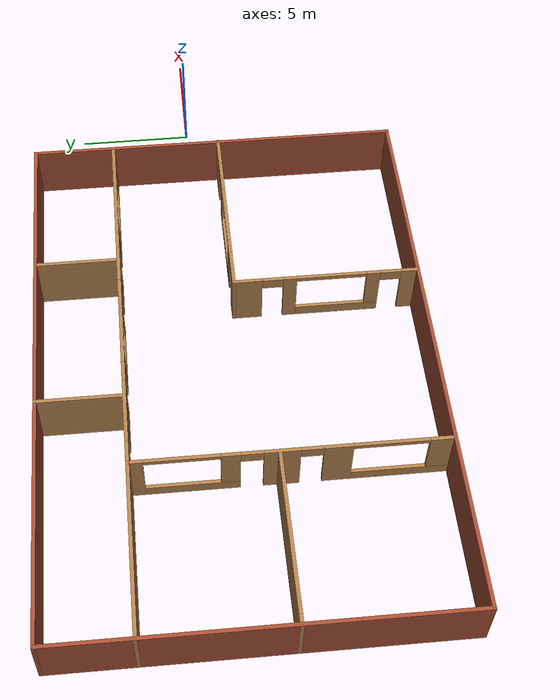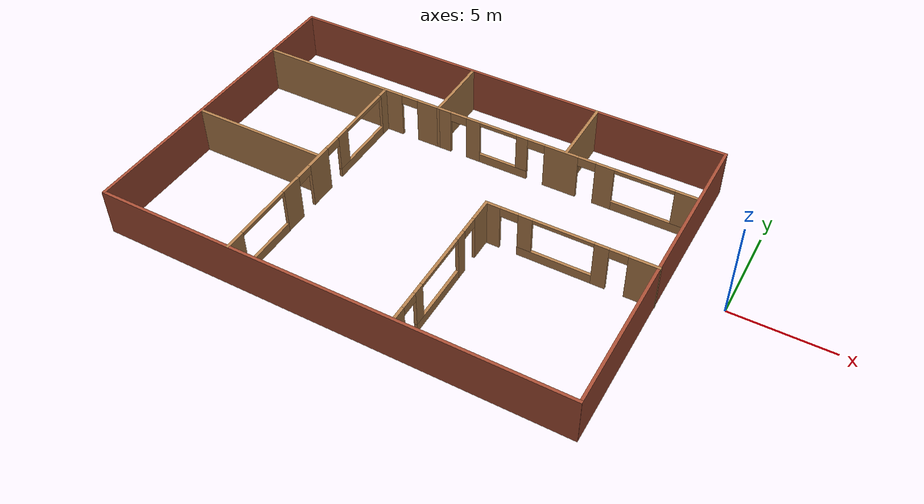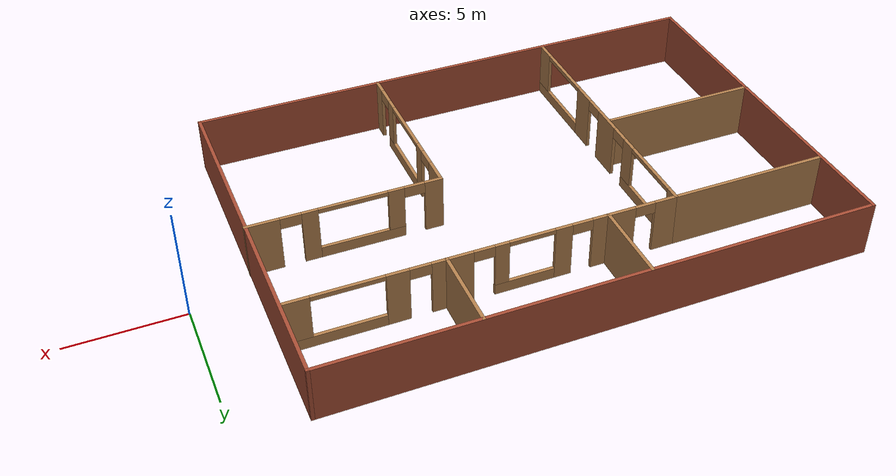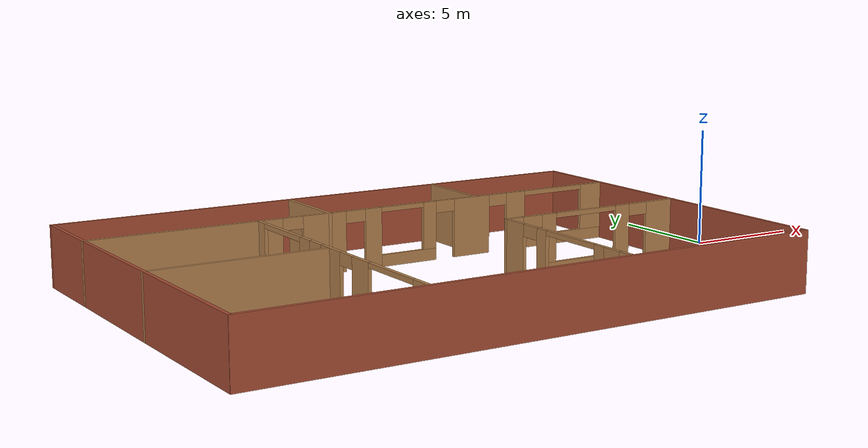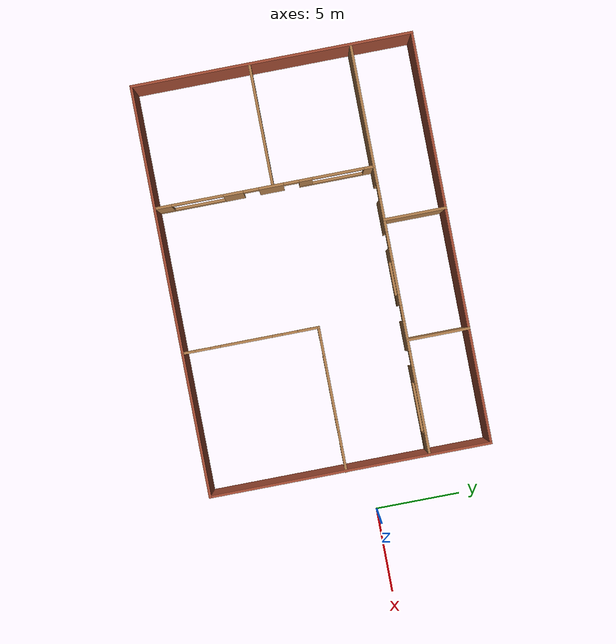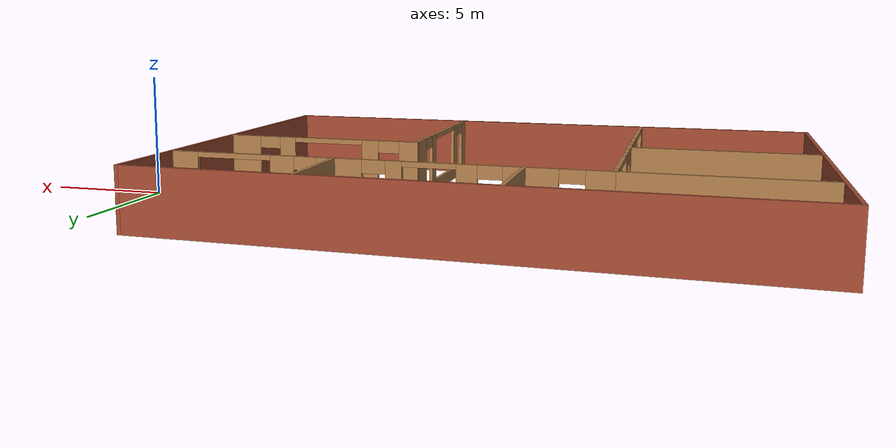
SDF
<?xml version='1.0'?>
<sdf version='1.6'>
  <model name='building'>
    <pose frame=''>-14.7784 -1.09336 0 0 -0 0</pose>
    <link name='Wall_0'>
      <collision name='Wall_0_Collision'>
        <geometry>
          <box>
            <size>16.4468 0.15 2.5</size>
          </box>
        </geometry>
        <pose frame=''>0 0 1.25 0 -0 0</pose>
      </collision>
      <visual name='Wall_0_Visual'>
        <pose frame=''>0 0 1.25 0 -0 0</pose>
        <geometry>
          <box>
            <size>16.4468 0.15 2.5</size>
          </box>
        </geometry>
        <material>
          <script>
            <uri>file://media/materials/scripts/gazebo.material</uri>
            <name>Gazebo/Bricks</name>
          </script>
          <ambient>1 1 1 1</ambient>
        </material>
        <meta>
          <layer>0</layer>
        </meta>
      </visual>
      <pose frame=''>-11.9342 0.013299 0 0 0 -1.5708</pose>
    </link>
    <link name='Wall_1'>
      <collision name='Wall_1_Collision'>
        <geometry>
          <box>
            <size>24 0.15 2.5</size>
          </box>
        </geometry>
        <pose frame=''>0 0 1.25 0 -0 0</pose>
      </collision>
      <visual name='Wall_1_Visual'>
        <pose frame=''>0 0 1.25 0 -0 0</pose>
        <geometry>
          <box>
            <size>24 0.15 2.5</size>
          </box>
        </geometry>
        <material>
          <script>
            <uri>file://media/materials/scripts/gazebo.material</uri>
            <name>Gazebo/Bricks</name>
          </script>
          <ambient>1 1 1 1</ambient>
        </material>
        <meta>
          <layer>0</layer>
        </meta>
      </visual>
      <pose frame=''>-0.009192 -8.1617 0 0 -0 0</pose>
    </link>
    <link name='Wall_10'>
      <pose frame=''>7.7596 -0.253061 0 0 -0 3.14159</pose>
      <visual name='Wall_10_Visual_0'>
        <pose frame=''>-3.51043 0 1.25 0 -0 0</pose>
        <geometry>
          <box>
            <size>1.47914 0.15 2.5</size>
          </box>
        </geometry>
        <material>
          <script>
            <uri>file://media/materials/scripts/gazebo.material</uri>
            <name>Gazebo/Wood</name>
          </script>
          <ambient>0.435294 0.796078 0.67451 1</ambient>
        </material>
        <meta>
          <layer>0</layer>
        </meta>
      </visual>
      <collision name='Wall_10_Collision_0'>
        <geometry>
          <box>
            <size>1.47914 0.15 2.5</size>
          </box>
        </geometry>
        <pose frame=''>-3.51043 0 1.25 0 -0 0</pose>
      </collision>
      <visual name='Wall_10_Visual_1'>
        <pose frame=''>-1.51836 0 1.25 0 -0 0</pose>
        <geometry>
          <box>
            <size>0.704992 0.15 2.5</size>
          </box>
        </geometry>
        <material>
          <script>
            <uri>file://media/materials/scripts/gazebo.material</uri>
            <name>Gazebo/Wood</name>
          </script>
          <ambient>0.435294 0.796078 0.67451 1</ambient>
        </material>
        <meta>
          <layer>0</layer>
        </meta>
      </visual>
      <collision name='Wall_10_Collision_1'>
        <geometry>
          <box>
            <size>0.704992 0.15 2.5</size>
          </box>
        </geometry>
        <pose frame=''>-1.51836 0 1.25 0 -0 0</pose>
      </collision>
      <visual name='Wall_10_Visual_2'>
        <pose frame=''>3.84456 0 1.25 0 -0 0</pose>
        <geometry>
          <box>
            <size>0.810875 0.15 2.5</size>
          </box>
        </geometry>
        <material>
          <script>
            <uri>file://media/materials/scripts/gazebo.material</uri>
            <name>Gazebo/Wood</name>
          </script>
          <ambient>0.435294 0.796078 0.67451 1</ambient>
        </material>
        <meta>
          <layer>0</layer>
        </meta>
      </visual>
      <collision name='Wall_10_Collision_2'>
        <geometry>
          <box>
            <size>0.810875 0.15 2.5</size>
          </box>
        </geometry>
        <pose frame=''>3.84456 0 1.25 0 -0 0</pose>
      </collision>
      <visual name='Wall_10_Visual_3'>
        <pose frame=''>0.686629 0 0.25 0 -0 0</pose>
        <geometry>
          <box>
            <size>3.70499 0.15 0.5</size>
          </box>
        </geometry>
        <material>
          <script>
            <uri>file://media/materials/scripts/gazebo.material</uri>
            <name>Gazebo/Wood</name>
          </script>
          <ambient>0.435294 0.796078 0.67451 1</ambient>
        </material>
        <meta>
          <layer>0</layer>
        </meta>
      </visual>
      <collision name='Wall_10_Collision_3'>
        <geometry>
          <box>
            <size>3.70499 0.15 0.5</size>
          </box>
        </geometry>
        <pose frame=''>0.686629 0 0.25 0 -0 0</pose>
      </collision>
      <visual name='Wall_10_Visual_4'>
        <pose frame=''>2.18663 0 1.5 0 -0 0</pose>
        <geometry>
          <box>
            <size>0.704992 0.15 2</size>
          </box>
        </geometry>
        <material>
          <script>
            <uri>file://media/materials/scripts/gazebo.material</uri>
            <name>Gazebo/Wood</name>
          </script>
          <ambient>0.435294 0.796078 0.67451 1</ambient>
        </material>
        <meta>
          <layer>0</layer>
        </meta>
      </visual>
      <collision name='Wall_10_Collision_4'>
        <geometry>
          <box>
            <size>0.704992 0.15 2</size>
          </box>
        </geometry>
        <pose frame=''>2.18663 0 1.5 0 -0 0</pose>
      </collision>
      <visual name='Wall_10_Visual_5'>
        <pose frame=''>-2.32086 0 2.25 0 -0 0</pose>
        <geometry>
          <box>
            <size>0.9 0.15 0.5</size>
          </box>
        </geometry>
        <material>
          <script>
            <uri>file://media/materials/scripts/gazebo.material</uri>
            <name>Gazebo/Wood</name>
          </script>
          <ambient>0.435294 0.796078 0.67451 1</ambient>
        </material>
        <meta>
          <layer>0</layer>
        </meta>
      </visual>
      <collision name='Wall_10_Collision_5'>
        <geometry>
          <box>
            <size>0.9 0.15 0.5</size>
          </box>
        </geometry>
        <pose frame=''>-2.32086 0 2.25 0 -0 0</pose>
      </collision>
      <visual name='Wall_10_Visual_6'>
        <pose frame=''>2.98913 0 2.25 0 -0 0</pose>
        <geometry>
          <box>
            <size>0.9 0.15 0.5</size>
          </box>
        </geometry>
        <material>
          <script>
            <uri>file://media/materials/scripts/gazebo.material</uri>
            <name>Gazebo/Wood</name>
          </script>
          <ambient>0.435294 0.796078 0.67451 1</ambient>
        </material>
        <meta>
          <layer>0</layer>
        </meta>
      </visual>
      <collision name='Wall_10_Collision_6'>
        <geometry>
          <box>
            <size>0.9 0.15 0.5</size>
          </box>
        </geometry>
        <pose frame=''>2.98913 0 2.25 0 -0 0</pose>
      </collision>
      <visual name='Wall_10_Visual_7'>
        <pose frame=''>0.334134 0 2.4 0 -0 0</pose>
        <geometry>
          <box>
            <size>3 0.15 0.2</size>
          </box>
        </geometry>
        <material>
          <script>
            <uri>file://media/materials/scripts/gazebo.material</uri>
            <name>Gazebo/Wood</name>
          </script>
          <ambient>0.435294 0.796078 0.67451 1</ambient>
        </material>
        <meta>
          <layer>0</layer>
        </meta>
      </visual>
      <collision name='Wall_10_Collision_7'>
        <geometry>
          <box>
            <size>3 0.15 0.2</size>
          </box>
        </geometry>
        <pose frame=''>0.334134 0 2.4 0 -0 0</pose>
      </collision>
    </link>
    <link name='Wall_11'>
      <pose frame=''>3.5846 -4.17806 0 0 0 -1.5708</pose>
      <visual name='Wall_11_Visual_0'>
        <pose frame=''>-3.35523 0 1.25 0 -0 0</pose>
        <geometry>
          <box>
            <size>1.28954 0.15 2.5</size>
          </box>
        </geometry>
        <material>
          <script>
            <uri>file://media/materials/scripts/gazebo.material</uri>
            <name>Gazebo/Wood</name>
          </script>
          <ambient>0.435294 0.796078 0.67451 1</ambient>
        </material>
        <meta>
          <layer>0</layer>
        </meta>
      </visual>
      <collision name='Wall_11_Collision_0'>
        <geometry>
          <box>
            <size>1.28954 0.15 2.5</size>
          </box>
        </geometry>
        <pose frame=''>-3.35523 0 1.25 0 -0 0</pose>
      </collision>
      <visual name='Wall_11_Visual_1'>
        <pose frame=''>-1.51831 0 1.25 0 -0 0</pose>
        <geometry>
          <box>
            <size>0.58431 0.15 2.5</size>
          </box>
        </geometry>
        <material>
          <script>
            <uri>file://media/materials/scripts/gazebo.material</uri>
            <name>Gazebo/Wood</name>
          </script>
          <ambient>0.435294 0.796078 0.67451 1</ambient>
        </material>
        <meta>
          <layer>0</layer>
        </meta>
      </visual>
      <collision name='Wall_11_Collision_1'>
        <geometry>
          <box>
            <size>0.58431 0.15 2.5</size>
          </box>
        </geometry>
        <pose frame=''>-1.51831 0 1.25 0 -0 0</pose>
      </collision>
      <visual name='Wall_11_Visual_2'>
        <pose frame=''>3.62908 0 1.25 0 -0 0</pose>
        <geometry>
          <box>
            <size>0.741842 0.15 2.5</size>
          </box>
        </geometry>
        <material>
          <script>
            <uri>file://media/materials/scripts/gazebo.material</uri>
            <name>Gazebo/Wood</name>
          </script>
          <ambient>0.435294 0.796078 0.67451 1</ambient>
        </material>
        <meta>
          <layer>0</layer>
        </meta>
      </visual>
      <collision name='Wall_11_Collision_2'>
        <geometry>
          <box>
            <size>0.741842 0.15 2.5</size>
          </box>
        </geometry>
        <pose frame=''>3.62908 0 1.25 0 -0 0</pose>
      </collision>
      <visual name='Wall_11_Visual_3'>
        <pose frame=''>0.566003 0 0.25 0 -0 0</pose>
        <geometry>
          <box>
            <size>3.58431 0.15 0.5</size>
          </box>
        </geometry>
        <material>
          <script>
            <uri>file://media/materials/scripts/gazebo.material</uri>
            <name>Gazebo/Wood</name>
          </script>
          <ambient>0.435294 0.796078 0.67451 1</ambient>
        </material>
        <meta>
          <layer>0</layer>
        </meta>
      </visual>
      <collision name='Wall_11_Collision_3'>
        <geometry>
          <box>
            <size>3.58431 0.15 0.5</size>
          </box>
        </geometry>
        <pose frame=''>0.566003 0 0.25 0 -0 0</pose>
      </collision>
      <visual name='Wall_11_Visual_4'>
        <pose frame=''>2.066 0 1.5 0 -0 0</pose>
        <geometry>
          <box>
            <size>0.58431 0.15 2</size>
          </box>
        </geometry>
        <material>
          <script>
            <uri>file://media/materials/scripts/gazebo.material</uri>
            <name>Gazebo/Wood</name>
          </script>
          <ambient>0.435294 0.796078 0.67451 1</ambient>
        </material>
        <meta>
          <layer>0</layer>
        </meta>
      </visual>
      <collision name='Wall_11_Collision_4'>
        <geometry>
          <box>
            <size>0.58431 0.15 2</size>
          </box>
        </geometry>
        <pose frame=''>2.066 0 1.5 0 -0 0</pose>
      </collision>
      <visual name='Wall_11_Visual_5'>
        <pose frame=''>-2.26046 0 2.25 0 -0 0</pose>
        <geometry>
          <box>
            <size>0.9 0.15 0.5</size>
          </box>
        </geometry>
        <material>
          <script>
            <uri>file://media/materials/scripts/gazebo.material</uri>
            <name>Gazebo/Wood</name>
          </script>
          <ambient>0.435294 0.796078 0.67451 1</ambient>
        </material>
        <meta>
          <layer>0</layer>
        </meta>
      </visual>
      <collision name='Wall_11_Collision_5'>
        <geometry>
          <box>
            <size>0.9 0.15 0.5</size>
          </box>
        </geometry>
        <pose frame=''>-2.26046 0 2.25 0 -0 0</pose>
      </collision>
      <visual name='Wall_11_Visual_6'>
        <pose frame=''>2.80816 0 2.25 0 -0 0</pose>
        <geometry>
          <box>
            <size>0.9 0.15 0.5</size>
          </box>
        </geometry>
        <material>
          <script>
            <uri>file://media/materials/scripts/gazebo.material</uri>
            <name>Gazebo/Wood</name>
          </script>
          <ambient>0.435294 0.796078 0.67451 1</ambient>
        </material>
        <meta>
          <layer>0</layer>
        </meta>
      </visual>
      <collision name='Wall_11_Collision_6'>
        <geometry>
          <box>
            <size>0.9 0.15 0.5</size>
          </box>
        </geometry>
        <pose frame=''>2.80816 0 2.25 0 -0 0</pose>
      </collision>
      <visual name='Wall_11_Visual_7'>
        <pose frame=''>0.273848 0 2.4 0 -0 0</pose>
        <geometry>
          <box>
            <size>3 0.15 0.2</size>
          </box>
        </geometry>
        <material>
          <script>
            <uri>file://media/materials/scripts/gazebo.material</uri>
            <name>Gazebo/Wood</name>
          </script>
          <ambient>0.435294 0.796078 0.67451 1</ambient>
        </material>
        <meta>
          <layer>0</layer>
        </meta>
      </visual>
      <collision name='Wall_11_Collision_7'>
        <geometry>
          <box>
            <size>3 0.15 0.2</size>
          </box>
        </geometry>
        <pose frame=''>0.273848 0 2.4 0 -0 0</pose>
      </collision>
    </link>
    <link name='Wall_13'>
      <collision name='Wall_13_Collision'>
        <geometry>
          <box>
            <size>7.09 0.15 2.5</size>
          </box>
        </geometry>
        <pose frame=''>0 0 1.25 0 -0 0</pose>
      </collision>
      <visual name='Wall_13_Visual'>
        <pose frame=''>0 0 1.25 0 -0 0</pose>
        <geometry>
          <box>
            <size>7.09 0.15 2.5</size>
          </box>
        </geometry>
        <material>
          <script>
            <uri>file://media/materials/scripts/gazebo.material</uri>
            <name>Gazebo/Wood</name>
          </script>
          <ambient>1 1 1 1</ambient>
        </material>
        <meta>
          <layer>0</layer>
        </meta>
      </visual>
      <pose frame=''>-8.4646 -1.29064 0 0 -0 3.14159</pose>
    </link>
    <link name='Wall_15'>
      <collision name='Wall_15_Collision'>
        <geometry>
          <box>
            <size>3.71 0.15 2.5</size>
          </box>
        </geometry>
        <pose frame=''>0 0 1.25 0 -0 0</pose>
      </collision>
      <visual name='Wall_15_Visual'>
        <pose frame=''>0 0 1.25 0 -0 0</pose>
        <geometry>
          <box>
            <size>3.71 0.15 2.5</size>
          </box>
        </geometry>
        <material>
          <script>
            <uri>file://media/materials/scripts/gazebo.material</uri>
            <name>Gazebo/Wood</name>
          </script>
          <ambient>1 1 1 1</ambient>
        </material>
        <meta>
          <layer>0</layer>
        </meta>
      </visual>
      <pose frame=''>-1.7396 6.38136 0 0 0 -1.5708</pose>
    </link>
    <link name='Wall_17'>
      <collision name='Wall_17_Collision'>
        <geometry>
          <box>
            <size>3.70921 0.15 2.5</size>
          </box>
        </geometry>
        <pose frame=''>0 0 1.25 0 -0 0</pose>
      </collision>
      <visual name='Wall_17_Visual'>
        <pose frame=''>0 0 1.25 0 -0 0</pose>
        <geometry>
          <box>
            <size>3.70921 0.15 2.5</size>
          </box>
        </geometry>
        <material>
          <script>
            <uri>file://media/materials/scripts/gazebo.material</uri>
            <name>Gazebo/Wood</name>
          </script>
          <ambient>1 1 1 1</ambient>
        </material>
        <meta>
          <layer>0</layer>
        </meta>
      </visual>
      <pose frame=''>5.2594 6.38186 0 0 0 -1.5708</pose>
    </link>
    <link name='Wall_2'>
      <collision name='Wall_2_Collision'>
        <geometry>
          <box>
            <size>16.4468 0.15 2.5</size>
          </box>
        </geometry>
        <pose frame=''>0 0 1.25 0 -0 0</pose>
      </collision>
      <visual name='Wall_2_Visual'>
        <pose frame=''>0 0 1.25 0 -0 0</pose>
        <geometry>
          <box>
            <size>16.4468 0.15 2.5</size>
          </box>
        </geometry>
        <material>
          <script>
            <uri>file://media/materials/scripts/gazebo.material</uri>
            <name>Gazebo/Bricks</name>
          </script>
          <ambient>1 1 1 1</ambient>
        </material>
        <meta>
          <layer>0</layer>
        </meta>
      </visual>
      <pose frame=''>11.9158 0.013299 0 0 -0 1.5708</pose>
    </link>
    <link name='Wall_3'>
      <collision name='Wall_3_Collision'>
        <geometry>
          <box>
            <size>24 0.15 2.5</size>
          </box>
        </geometry>
        <pose frame=''>0 0 1.25 0 -0 0</pose>
      </collision>
      <visual name='Wall_3_Visual'>
        <pose frame=''>0 0 1.25 0 -0 0</pose>
        <geometry>
          <box>
            <size>24 0.15 2.5</size>
          </box>
        </geometry>
        <material>
          <script>
            <uri>file://media/materials/scripts/gazebo.material</uri>
            <name>Gazebo/Bricks</name>
          </script>
          <ambient>1 1 1 1</ambient>
        </material>
        <meta>
          <layer>0</layer>
        </meta>
      </visual>
      <pose frame=''>-0.009192 8.1617 0 0 -0 3.14159</pose>
    </link>
    <link name='Wall_5'>
      <collision name='Wall_5_Collision'>
        <geometry>
          <box>
            <size>7.25 0.15 2.5</size>
          </box>
        </geometry>
        <pose frame=''>0 0 1.25 0 -0 0</pose>
      </collision>
      <visual name='Wall_5_Visual'>
        <pose frame=''>0 0 1.25 0 -0 0</pose>
        <geometry>
          <box>
            <size>7.25 0.15 2.5</size>
          </box>
        </geometry>
        <material>
          <script>
            <uri>file://media/materials/scripts/gazebo.material</uri>
            <name>Gazebo/Wood</name>
          </script>
          <ambient>1 1 1 1</ambient>
        </material>
        <meta>
          <layer>0</layer>
        </meta>
      </visual>
      <pose frame=''>-8.3844 4.60149 0 0 0 -3.5e-05</pose>
    </link>
    <link name='Wall_6'>
      <pose frame=''>-4.8346 -1.78014 0 0 0 -1.5708</pose>
      <visual name='Wall_6_Visual_0'>
        <pose frame=''>-6.12294 0 1.25 0 -0 0</pose>
        <geometry>
          <box>
            <size>0.667129 0.15 2.5</size>
          </box>
        </geometry>
        <material>
          <script>
            <uri>file://media/materials/scripts/gazebo.material</uri>
            <name>Gazebo/Wood</name>
          </script>
          <ambient>1 1 1 1</ambient>
        </material>
        <meta>
          <layer>0</layer>
        </meta>
      </visual>
      <collision name='Wall_6_Collision_0'>
        <geometry>
          <box>
            <size>0.667129 0.15 2.5</size>
          </box>
        </geometry>
        <pose frame=''>-6.12294 0 1.25 0 -0 0</pose>
      </collision>
      <visual name='Wall_6_Visual_1'>
        <pose frame=''>-0.389087 0 1.25 0 -0 0</pose>
        <geometry>
          <box>
            <size>1.44367 0.15 2.5</size>
          </box>
        </geometry>
        <material>
          <script>
            <uri>file://media/materials/scripts/gazebo.material</uri>
            <name>Gazebo/Wood</name>
          </script>
          <ambient>1 1 1 1</ambient>
        </material>
        <meta>
          <layer>0</layer>
        </meta>
      </visual>
      <collision name='Wall_6_Collision_1'>
        <geometry>
          <box>
            <size>1.44367 0.15 2.5</size>
          </box>
        </geometry>
        <pose frame=''>-0.389087 0 1.25 0 -0 0</pose>
      </collision>
      <visual name='Wall_6_Visual_2'>
        <pose frame=''>1.81436 0 1.25 0 -0 0</pose>
        <geometry>
          <box>
            <size>1.16323 0.15 2.5</size>
          </box>
        </geometry>
        <material>
          <script>
            <uri>file://media/materials/scripts/gazebo.material</uri>
            <name>Gazebo/Wood</name>
          </script>
          <ambient>1 1 1 1</ambient>
        </material>
        <meta>
          <layer>0</layer>
        </meta>
      </visual>
      <collision name='Wall_6_Collision_2'>
        <geometry>
          <box>
            <size>1.16323 0.15 2.5</size>
          </box>
        </geometry>
        <pose frame=''>1.81436 0 1.25 0 -0 0</pose>
      </collision>
      <visual name='Wall_6_Visual_3'>
        <pose frame=''>-3.90015 0 0.25 0 -0 0</pose>
        <geometry>
          <box>
            <size>3.77845 0.15 0.5</size>
          </box>
        </geometry>
        <material>
          <script>
            <uri>file://media/materials/scripts/gazebo.material</uri>
            <name>Gazebo/Wood</name>
          </script>
          <ambient>1 1 1 1</ambient>
        </material>
        <meta>
          <layer>0</layer>
        </meta>
      </visual>
      <collision name='Wall_6_Collision_3'>
        <geometry>
          <box>
            <size>3.77845 0.15 0.5</size>
          </box>
        </geometry>
        <pose frame=''>-3.90015 0 0.25 0 -0 0</pose>
      </collision>
      <visual name='Wall_6_Visual_4'>
        <pose frame=''>4.42624 0 0.25 0 -0 0</pose>
        <geometry>
          <box>
            <size>4.06052 0.15 0.5</size>
          </box>
        </geometry>
        <material>
          <script>
            <uri>file://media/materials/scripts/gazebo.material</uri>
            <name>Gazebo/Wood</name>
          </script>
          <ambient>1 1 1 1</ambient>
        </material>
        <meta>
          <layer>0</layer>
        </meta>
      </visual>
      <collision name='Wall_6_Collision_4'>
        <geometry>
          <box>
            <size>4.06052 0.15 0.5</size>
          </box>
        </geometry>
        <pose frame=''>4.42624 0 0.25 0 -0 0</pose>
      </collision>
      <visual name='Wall_6_Visual_5'>
        <pose frame=''>-2.40015 0 1.5 0 -0 0</pose>
        <geometry>
          <box>
            <size>0.77845 0.15 2</size>
          </box>
        </geometry>
        <material>
          <script>
            <uri>file://media/materials/scripts/gazebo.material</uri>
            <name>Gazebo/Wood</name>
          </script>
          <ambient>1 1 1 1</ambient>
        </material>
        <meta>
          <layer>0</layer>
        </meta>
      </visual>
      <collision name='Wall_6_Collision_5'>
        <geometry>
          <box>
            <size>0.77845 0.15 2</size>
          </box>
        </geometry>
        <pose frame=''>-2.40015 0 1.5 0 -0 0</pose>
      </collision>
      <visual name='Wall_6_Visual_6'>
        <pose frame=''>-2.40015 0 1.5 0 -0 0</pose>
        <geometry>
          <box>
            <size>0.77845 0.15 2</size>
          </box>
        </geometry>
        <material>
          <script>
            <uri>file://media/materials/scripts/gazebo.material</uri>
            <name>Gazebo/Wood</name>
          </script>
          <ambient>1 1 1 1</ambient>
        </material>
        <meta>
          <layer>0</layer>
        </meta>
      </visual>
      <collision name='Wall_6_Collision_6'>
        <geometry>
          <box>
            <size>0.77845 0.15 2</size>
          </box>
        </geometry>
        <pose frame=''>-2.40015 0 1.5 0 -0 0</pose>
      </collision>
      <visual name='Wall_6_Visual_7'>
        <pose frame=''>5.92624 0 1.5 0 -0 0</pose>
        <geometry>
          <box>
            <size>1.06052 0.15 2</size>
          </box>
        </geometry>
        <material>
          <script>
            <uri>file://media/materials/scripts/gazebo.material</uri>
            <name>Gazebo/Wood</name>
          </script>
          <ambient>1 1 1 1</ambient>
        </material>
        <meta>
          <layer>0</layer>
        </meta>
      </visual>
      <collision name='Wall_6_Collision_7'>
        <geometry>
          <box>
            <size>1.06052 0.15 2</size>
          </box>
        </geometry>
        <pose frame=''>5.92624 0 1.5 0 -0 0</pose>
      </collision>
      <visual name='Wall_6_Visual_8'>
        <pose frame=''>0.782747 0 2.25 0 -0 0</pose>
        <geometry>
          <box>
            <size>0.9 0.15 0.5</size>
          </box>
        </geometry>
        <material>
          <script>
            <uri>file://media/materials/scripts/gazebo.material</uri>
            <name>Gazebo/Wood</name>
          </script>
          <ambient>1 1 1 1</ambient>
        </material>
        <meta>
          <layer>0</layer>
        </meta>
      </visual>
      <collision name='Wall_6_Collision_8'>
        <geometry>
          <box>
            <size>0.9 0.15 0.5</size>
          </box>
        </geometry>
        <pose frame=''>0.782747 0 2.25 0 -0 0</pose>
      </collision>
      <visual name='Wall_6_Visual_9'>
        <pose frame=''>-1.56092 0 2.25 0 -0 0</pose>
        <geometry>
          <box>
            <size>0.9 0.15 0.5</size>
          </box>
        </geometry>
        <material>
          <script>
            <uri>file://media/materials/scripts/gazebo.material</uri>
            <name>Gazebo/Wood</name>
          </script>
          <ambient>1 1 1 1</ambient>
        </material>
        <meta>
          <layer>0</layer>
        </meta>
      </visual>
      <collision name='Wall_6_Collision_9'>
        <geometry>
          <box>
            <size>0.9 0.15 0.5</size>
          </box>
        </geometry>
        <pose frame=''>-1.56092 0 2.25 0 -0 0</pose>
      </collision>
      <visual name='Wall_6_Visual_10'>
        <pose frame=''>-1.56092 0 2.25 0 -0 0</pose>
        <geometry>
          <box>
            <size>0.9 0.15 0.5</size>
          </box>
        </geometry>
        <material>
          <script>
            <uri>file://media/materials/scripts/gazebo.material</uri>
            <name>Gazebo/Wood</name>
          </script>
          <ambient>1 1 1 1</ambient>
        </material>
        <meta>
          <layer>0</layer>
        </meta>
      </visual>
      <collision name='Wall_6_Collision_10'>
        <geometry>
          <box>
            <size>0.9 0.15 0.5</size>
          </box>
        </geometry>
        <pose frame=''>-1.56092 0 2.25 0 -0 0</pose>
      </collision>
      <visual name='Wall_6_Visual_11'>
        <pose frame=''>-4.28937 0 2.4 0 -0 0</pose>
        <geometry>
          <box>
            <size>3 0.15 0.2</size>
          </box>
        </geometry>
        <material>
          <script>
            <uri>file://media/materials/scripts/gazebo.material</uri>
            <name>Gazebo/Wood</name>
          </script>
          <ambient>1 1 1 1</ambient>
        </material>
        <meta>
          <layer>0</layer>
        </meta>
      </visual>
      <collision name='Wall_6_Collision_11'>
        <geometry>
          <box>
            <size>3 0.15 0.2</size>
          </box>
        </geometry>
        <pose frame=''>-4.28937 0 2.4 0 -0 0</pose>
      </collision>
      <visual name='Wall_6_Visual_12'>
        <pose frame=''>3.89598 0 2.4 0 -0 0</pose>
        <geometry>
          <box>
            <size>3 0.15 0.2</size>
          </box>
        </geometry>
        <material>
          <script>
            <uri>file://media/materials/scripts/gazebo.material</uri>
            <name>Gazebo/Wood</name>
          </script>
          <ambient>1 1 1 1</ambient>
        </material>
        <meta>
          <layer>0</layer>
        </meta>
      </visual>
      <collision name='Wall_6_Collision_12'>
        <geometry>
          <box>
            <size>3 0.15 0.2</size>
          </box>
        </geometry>
        <pose frame=''>3.89598 0 2.4 0 -0 0</pose>
      </collision>
    </link>
    <link name='Wall_8'>
      <pose frame=''>3.4656 4.60149 0 0 -0 1.5e-05</pose>
      <visual name='Wall_8_Visual_0'>
        <pose frame=''>-7.84677 0 1.25 0 -0 0</pose>
        <geometry>
          <box>
            <size>1.05647 0.15 2.5</size>
          </box>
        </geometry>
        <material>
          <script>
            <uri>file://media/materials/scripts/gazebo.material</uri>
            <name>Gazebo/Wood</name>
          </script>
          <ambient>1 1 1 1</ambient>
        </material>
        <meta>
          <layer>0</layer>
        </meta>
      </visual>
      <collision name='Wall_8_Collision_0'>
        <geometry>
          <box>
            <size>1.05647 0.15 2.5</size>
          </box>
        </geometry>
        <pose frame=''>-7.84677 0 1.25 0 -0 0</pose>
      </collision>
      <visual name='Wall_8_Visual_1'>
        <pose frame=''>-5.45184 0 1.25 0 -0 0</pose>
        <geometry>
          <box>
            <size>1.93339 0.15 2.5</size>
          </box>
        </geometry>
        <material>
          <script>
            <uri>file://media/materials/scripts/gazebo.material</uri>
            <name>Gazebo/Wood</name>
          </script>
          <ambient>1 1 1 1</ambient>
        </material>
        <meta>
          <layer>0</layer>
        </meta>
      </visual>
      <collision name='Wall_8_Collision_1'>
        <geometry>
          <box>
            <size>1.93339 0.15 2.5</size>
          </box>
        </geometry>
        <pose frame=''>-5.45184 0 1.25 0 -0 0</pose>
      </collision>
      <visual name='Wall_8_Visual_2'>
        <pose frame=''>-3.20827 0 1.25 0 -0 0</pose>
        <geometry>
          <box>
            <size>0.753748 0.15 2.5</size>
          </box>
        </geometry>
        <material>
          <script>
            <uri>file://media/materials/scripts/gazebo.material</uri>
            <name>Gazebo/Wood</name>
          </script>
          <ambient>1 1 1 1</ambient>
        </material>
        <meta>
          <layer>0</layer>
        </meta>
      </visual>
      <collision name='Wall_8_Collision_2'>
        <geometry>
          <box>
            <size>0.753748 0.15 2.5</size>
          </box>
        </geometry>
        <pose frame=''>-3.20827 0 1.25 0 -0 0</pose>
      </collision>
      <visual name='Wall_8_Visual_3'>
        <pose frame=''>1.56168 0 1.25 0 -0 0</pose>
        <geometry>
          <box>
            <size>1.75849 0.15 2.5</size>
          </box>
        </geometry>
        <material>
          <script>
            <uri>file://media/materials/scripts/gazebo.material</uri>
            <name>Gazebo/Wood</name>
          </script>
          <ambient>1 1 1 1</ambient>
        </material>
        <meta>
          <layer>0</layer>
        </meta>
      </visual>
      <collision name='Wall_8_Collision_3'>
        <geometry>
          <box>
            <size>1.75849 0.15 2.5</size>
          </box>
        </geometry>
        <pose frame=''>1.56168 0 1.25 0 -0 0</pose>
      </collision>
      <visual name='Wall_8_Visual_4'>
        <pose frame=''>3.81759 0 1.25 0 -0 0</pose>
        <geometry>
          <box>
            <size>0.953347 0.15 2.5</size>
          </box>
        </geometry>
        <material>
          <script>
            <uri>file://media/materials/scripts/gazebo.material</uri>
            <name>Gazebo/Wood</name>
          </script>
          <ambient>1 1 1 1</ambient>
        </material>
        <meta>
          <layer>0</layer>
        </meta>
      </visual>
      <collision name='Wall_8_Collision_4'>
        <geometry>
          <box>
            <size>0.953347 0.15 2.5</size>
          </box>
        </geometry>
        <pose frame=''>3.81759 0 1.25 0 -0 0</pose>
      </collision>
      <visual name='Wall_8_Visual_5'>
        <pose frame=''>-1.52448 0 0.25 0 -0 0</pose>
        <geometry>
          <box>
            <size>2.61383 0.15 0.5</size>
          </box>
        </geometry>
        <material>
          <script>
            <uri>file://media/materials/scripts/gazebo.material</uri>
            <name>Gazebo/Wood</name>
          </script>
          <ambient>1 1 1 1</ambient>
        </material>
        <meta>
          <layer>0</layer>
        </meta>
      </visual>
      <collision name='Wall_8_Collision_5'>
        <geometry>
          <box>
            <size>2.61383 0.15 0.5</size>
          </box>
        </geometry>
        <pose frame=''>-1.52448 0 0.25 0 -0 0</pose>
      </collision>
      <visual name='Wall_8_Visual_6'>
        <pose frame=''>6.33463 0 0.25 0 -0 0</pose>
        <geometry>
          <box>
            <size>4.08073 0.15 0.5</size>
          </box>
        </geometry>
        <material>
          <script>
            <uri>file://media/materials/scripts/gazebo.material</uri>
            <name>Gazebo/Wood</name>
          </script>
          <ambient>1 1 1 1</ambient>
        </material>
        <meta>
          <layer>0</layer>
        </meta>
      </visual>
      <collision name='Wall_8_Collision_6'>
        <geometry>
          <box>
            <size>4.08073 0.15 0.5</size>
          </box>
        </geometry>
        <pose frame=''>6.33463 0 0.25 0 -0 0</pose>
      </collision>
      <visual name='Wall_8_Visual_7'>
        <pose frame=''>-0.524482 0 1.5 0 -0 0</pose>
        <geometry>
          <box>
            <size>0.613827 0.15 2</size>
          </box>
        </geometry>
        <material>
          <script>
            <uri>file://media/materials/scripts/gazebo.material</uri>
            <name>Gazebo/Wood</name>
          </script>
          <ambient>1 1 1 1</ambient>
        </material>
        <meta>
          <layer>0</layer>
        </meta>
      </visual>
      <collision name='Wall_8_Collision_7'>
        <geometry>
          <box>
            <size>0.613827 0.15 2</size>
          </box>
        </geometry>
        <pose frame=''>-0.524482 0 1.5 0 -0 0</pose>
      </collision>
      <visual name='Wall_8_Visual_8'>
        <pose frame=''>-0.524482 0 1.5 0 -0 0</pose>
        <geometry>
          <box>
            <size>0.613827 0.15 2</size>
          </box>
        </geometry>
        <material>
          <script>
            <uri>file://media/materials/scripts/gazebo.material</uri>
            <name>Gazebo/Wood</name>
          </script>
          <ambient>1 1 1 1</ambient>
        </material>
        <meta>
          <layer>0</layer>
        </meta>
      </visual>
      <collision name='Wall_8_Collision_8'>
        <geometry>
          <box>
            <size>0.613827 0.15 2</size>
          </box>
        </geometry>
        <pose frame=''>-0.524482 0 1.5 0 -0 0</pose>
      </collision>
      <visual name='Wall_8_Visual_9'>
        <pose frame=''>7.83463 0 1.5 0 -0 0</pose>
        <geometry>
          <box>
            <size>1.08073 0.15 2</size>
          </box>
        </geometry>
        <material>
          <script>
            <uri>file://media/materials/scripts/gazebo.material</uri>
            <name>Gazebo/Wood</name>
          </script>
          <ambient>1 1 1 1</ambient>
        </material>
        <meta>
          <layer>0</layer>
        </meta>
      </visual>
      <collision name='Wall_8_Collision_9'>
        <geometry>
          <box>
            <size>1.08073 0.15 2</size>
          </box>
        </geometry>
        <pose frame=''>7.83463 0 1.5 0 -0 0</pose>
      </collision>
      <visual name='Wall_8_Visual_10'>
        <pose frame=''>-6.86853 0 2.25 0 -0 0</pose>
        <geometry>
          <box>
            <size>0.9 0.15 0.5</size>
          </box>
        </geometry>
        <material>
          <script>
            <uri>file://media/materials/scripts/gazebo.material</uri>
            <name>Gazebo/Wood</name>
          </script>
          <ambient>1 1 1 1</ambient>
        </material>
        <meta>
          <layer>0</layer>
        </meta>
      </visual>
      <collision name='Wall_8_Collision_10'>
        <geometry>
          <box>
            <size>0.9 0.15 0.5</size>
          </box>
        </geometry>
        <pose frame=''>-6.86853 0 2.25 0 -0 0</pose>
      </collision>
      <visual name='Wall_8_Visual_11'>
        <pose frame=''>-4.03514 0 2.25 0 -0 0</pose>
        <geometry>
          <box>
            <size>0.9 0.15 0.5</size>
          </box>
        </geometry>
        <material>
          <script>
            <uri>file://media/materials/scripts/gazebo.material</uri>
            <name>Gazebo/Wood</name>
          </script>
          <ambient>1 1 1 1</ambient>
        </material>
        <meta>
          <layer>0</layer>
        </meta>
      </visual>
      <collision name='Wall_8_Collision_11'>
        <geometry>
          <box>
            <size>0.9 0.15 0.5</size>
          </box>
        </geometry>
        <pose frame=''>-4.03514 0 2.25 0 -0 0</pose>
      </collision>
      <visual name='Wall_8_Visual_12'>
        <pose frame=''>2.89092 0 2.25 0 -0 0</pose>
        <geometry>
          <box>
            <size>0.9 0.15 0.5</size>
          </box>
        </geometry>
        <material>
          <script>
            <uri>file://media/materials/scripts/gazebo.material</uri>
            <name>Gazebo/Wood</name>
          </script>
          <ambient>1 1 1 1</ambient>
        </material>
        <meta>
          <layer>0</layer>
        </meta>
      </visual>
      <collision name='Wall_8_Collision_12'>
        <geometry>
          <box>
            <size>0.9 0.15 0.5</size>
          </box>
        </geometry>
        <pose frame=''>2.89092 0 2.25 0 -0 0</pose>
      </collision>
      <visual name='Wall_8_Visual_13'>
        <pose frame=''>0.232431 0 2.25 0 -0 0</pose>
        <geometry>
          <box>
            <size>0.9 0.15 0.5</size>
          </box>
        </geometry>
        <material>
          <script>
            <uri>file://media/materials/scripts/gazebo.material</uri>
            <name>Gazebo/Wood</name>
          </script>
          <ambient>1 1 1 1</ambient>
        </material>
        <meta>
          <layer>0</layer>
        </meta>
      </visual>
      <collision name='Wall_8_Collision_13'>
        <geometry>
          <box>
            <size>0.9 0.15 0.5</size>
          </box>
        </geometry>
        <pose frame=''>0.232431 0 2.25 0 -0 0</pose>
      </collision>
      <visual name='Wall_8_Visual_14'>
        <pose frame=''>0.232431 0 2.25 0 -0 0</pose>
        <geometry>
          <box>
            <size>0.9 0.15 0.5</size>
          </box>
        </geometry>
        <material>
          <script>
            <uri>file://media/materials/scripts/gazebo.material</uri>
            <name>Gazebo/Wood</name>
          </script>
          <ambient>1 1 1 1</ambient>
        </material>
        <meta>
          <layer>0</layer>
        </meta>
      </visual>
      <collision name='Wall_8_Collision_14'>
        <geometry>
          <box>
            <size>0.9 0.15 0.5</size>
          </box>
        </geometry>
        <pose frame=''>0.232431 0 2.25 0 -0 0</pose>
      </collision>
      <visual name='Wall_8_Visual_15'>
        <pose frame=''>-1.8314 0 2.4 0 -0 0</pose>
        <geometry>
          <box>
            <size>2 0.15 0.2</size>
          </box>
        </geometry>
        <material>
          <script>
            <uri>file://media/materials/scripts/gazebo.material</uri>
            <name>Gazebo/Wood</name>
          </script>
          <ambient>1 1 1 1</ambient>
        </material>
        <meta>
          <layer>0</layer>
        </meta>
      </visual>
      <collision name='Wall_8_Collision_15'>
        <geometry>
          <box>
            <size>2 0.15 0.2</size>
          </box>
        </geometry>
        <pose frame=''>-1.8314 0 2.4 0 -0 0</pose>
      </collision>
      <visual name='Wall_8_Visual_16'>
        <pose frame=''>5.79427 0 2.4 0 -0 0</pose>
        <geometry>
          <box>
            <size>3 0.15 0.2</size>
          </box>
        </geometry>
        <material>
          <script>
            <uri>file://media/materials/scripts/gazebo.material</uri>
            <name>Gazebo/Wood</name>
          </script>
          <ambient>1 1 1 1</ambient>
        </material>
        <meta>
          <layer>0</layer>
        </meta>
      </visual>
      <collision name='Wall_8_Collision_16'>
        <geometry>
          <box>
            <size>3 0.15 0.2</size>
          </box>
        </geometry>
        <pose frame=''>5.79427 0 2.4 0 -0 0</pose>
      </collision>
    </link>
    <static>1</static>
  </model>
</sdf>
